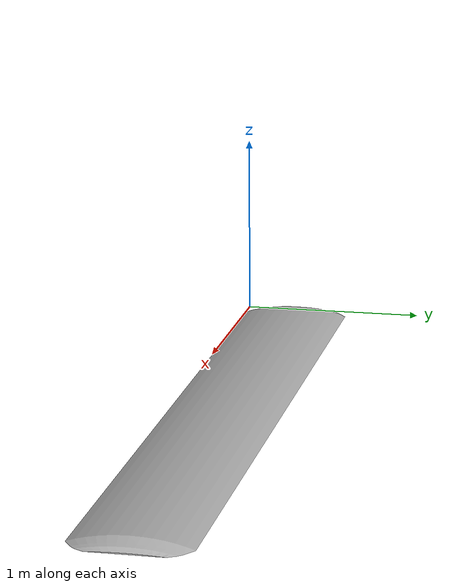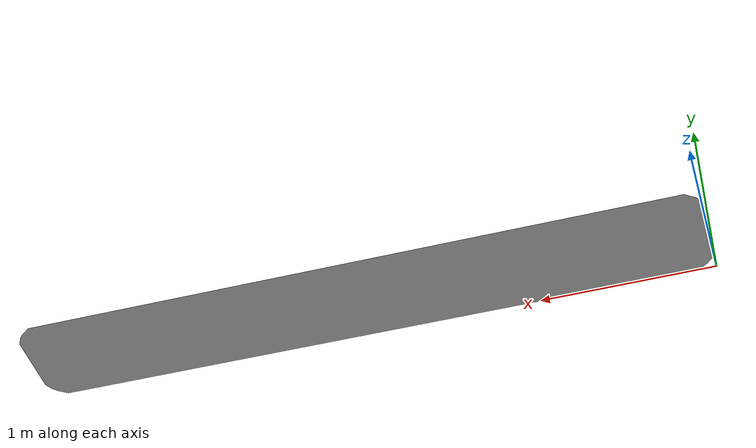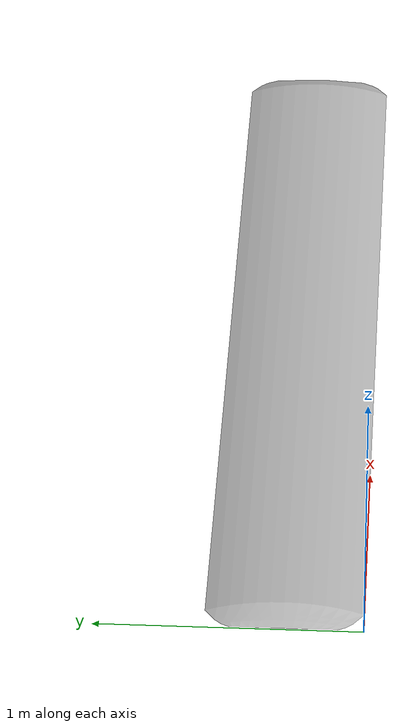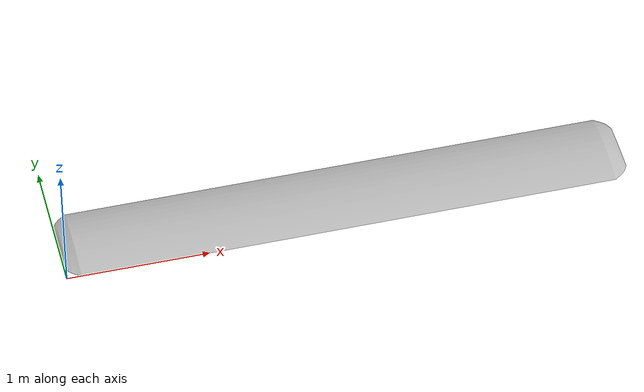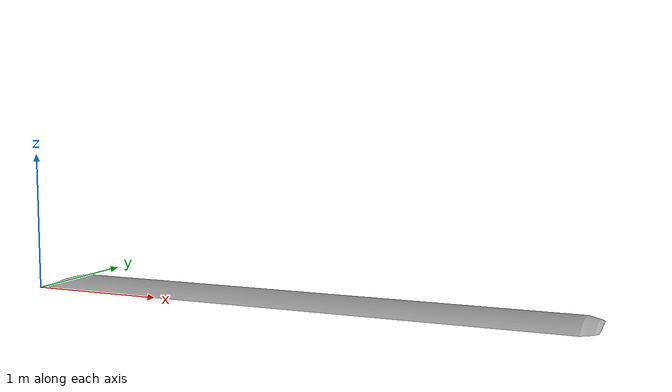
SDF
<?xml version="1.0" ?>
<sdf version="1.6">
  <model name="speed_bump_3_short">
    <static>true</static>
    <link name="link">
      <collision name="collision">
        <geometry>
          <mesh>
            <uri>model://speed_bump_3_short//bump_3_060.dae</uri>
          </mesh>
        </geometry>
        <surface>
          <friction>
            <ode>
              <mu>0.9</mu>
              <mu2>0.6</mu2>
            </ode>
          </friction>
        </surface>
      </collision>
      <visual name="visual">
        <geometry>
          <mesh>
            <uri>model://speed_bump_3_short//bump_3_060.dae</uri>
          </mesh>
        </geometry>
      </visual>
    </link>
  </model>
</sdf>
